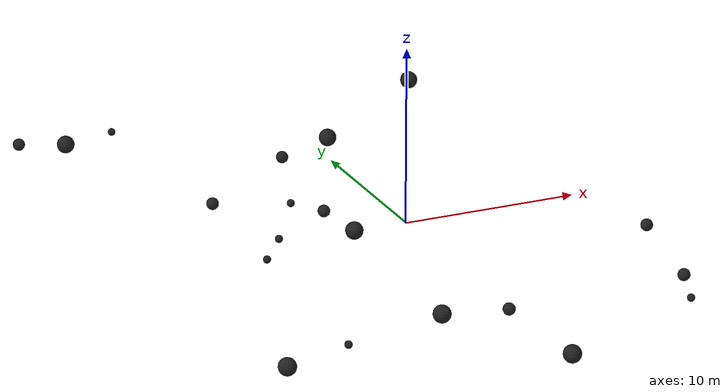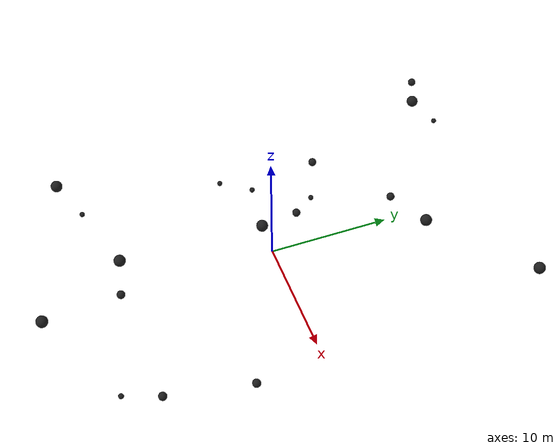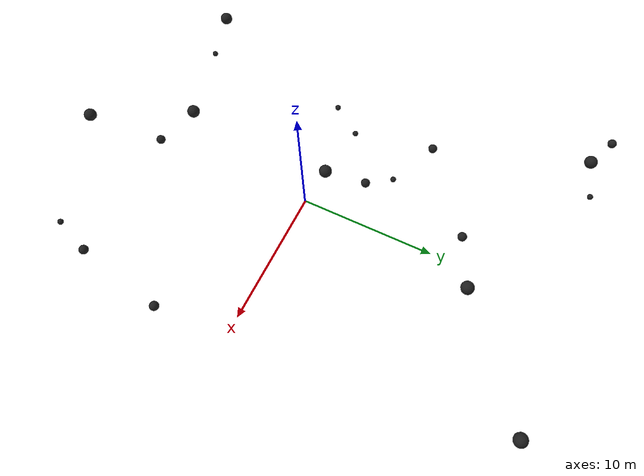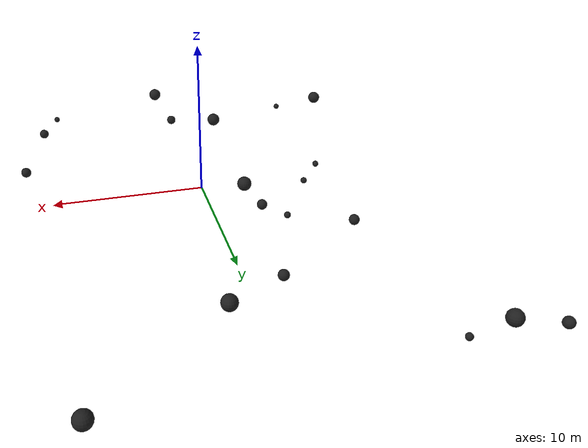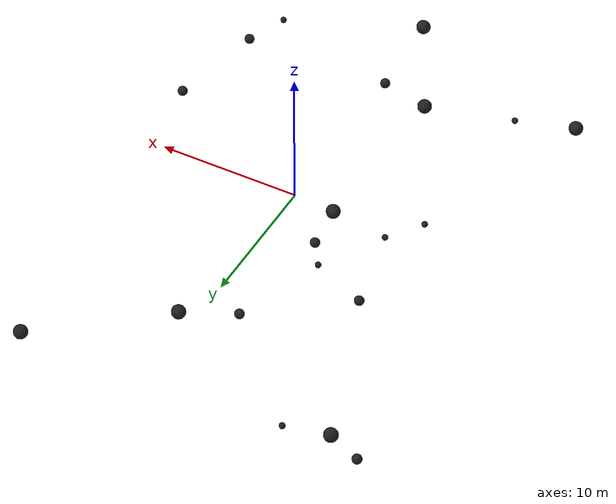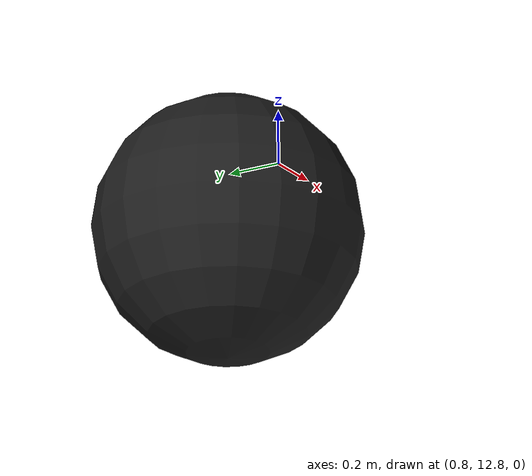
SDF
<?xml version="1.0"?>
<!-- automaticly generated by a script -->
<sdf version="1.6">
  <model name="robotx_obstacle_course">
    <include>
      <name>polyform_a3_0</name>
      <pose>-9.51901299938 -13.6526411138 0.0 0 0 0 </pose>
      <uri>model://polyform_a3</uri>
    </include>

    <include>
      <name>polyform_a3_1</name>
      <pose>-8.87493922023 -1.62732451142 0.0 0 0 0 </pose>
      <uri>model://polyform_a3</uri>
    </include>

    <include>
      <name>polyform_a3_2</name>
      <pose>-7.15997837919 0.735712823901 0.0 0 0 0 </pose>
      <uri>model://polyform_a3</uri>
    </include>

    <include>
      <name>polyform_a3_3</name>
      <pose>-9.52228297739 19.0434113951 0.0 0 0 0 </pose>
      <uri>model://polyform_a3</uri>
    </include>

    <include>
      <name>polyform_a3_4</name>
      <pose>9.31258210762 -15.3890309327 0.0 0 0 0 </pose>
      <uri>model://polyform_a3</uri>
    </include>

    <include>
      <name>polyform_a3_5</name>
      <pose>-4.54899725463 5.14004718159 0.0 0 0 0 </pose>
      <uri>model://polyform_a3</uri>
    </include>

    <include>
      <name>polyform_a5_0</name>
      <pose>-14.9976829466 19.3419442057 0.0 0 0 0 </pose>
      <uri>model://polyform_a5</uri>
    </include>

    <include>
      <name>polyform_a5_1</name>
      <pose>-2.27100525419 11.582333681 0.0 0 0 0 </pose>
      <uri>model://polyform_a5</uri>
    </include>

    <include>
      <name>polyform_a5_2</name>
      <pose>11.7647430317 -5.5495371033 0.0 0 0 0 </pose>
      <uri>model://polyform_a5</uri>
    </include>

    <include>
      <name>polyform_a5_3</name>
      <pose>-3.35584241716 3.37032512441 0.0 0 0 0 </pose>
      <uri>model://polyform_a5</uri>
    </include>

    <include>
      <name>polyform_a5_4</name>
      <pose>10.4068709522 -12.4876637829 0.0 0 0 0 </pose>
      <uri>model://polyform_a5</uri>
    </include>

    <include>
      <name>polyform_a5_5</name>
      <pose>-8.47331408752 6.80875432641 0.0 0 0 0 </pose>
      <uri>model://polyform_a5</uri>
    </include>

    <include>
      <name>polyform_a5_6</name>
      <pose>-0.0140695451195 -12.8572529135 0.0 0 0 0 </pose>
      <uri>model://polyform_a5</uri>
    </include>

    <include>
      <name>polyform_a7_0</name>
      <pose>-3.47434794301 -12.0321905918 0.0 0 0 0 </pose>
      <uri>model://polyform_a7</uri>
    </include>

    <include>
      <name>polyform_a7_1</name>
      <pose>1.26797614348 13.2948281227 0.0 0 0 0 </pose>
      <uri>model://polyform_a7</uri>
    </include>

    <include>
      <name>polyform_a7_2</name>
      <pose>-12.5899621971 18.2943689469 0.0 0 0 0 </pose>
      <uri>model://polyform_a7</uri>
    </include>

    <include>
      <name>polyform_a7_3</name>
      <pose>-2.98341339422 0.160281566457 0.0 0 0 0 </pose>
      <uri>model://polyform_a7</uri>
    </include>

    <include>
      <name>polyform_a7_4</name>
      <pose>0.418837873038 -19.3683419115 0.0 0 0 0 </pose>
      <uri>model://polyform_a7</uri>
    </include>

    <include>
      <name>polyform_a7_5</name>
      <pose>9.2676027467 19.7322015956 0.0 0 0 0 </pose>
      <uri>model://polyform_a7</uri>
    </include>

    <include>
      <name>polyform_a7_6</name>
      <pose>-13.4848986692 -14.9346088124 0.0 0 0 0 </pose>
      <uri>model://polyform_a7</uri>
    </include>

  </model>
</sdf>

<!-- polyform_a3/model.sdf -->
<sdf version="1.6">
  <!-- Reference: https://www.polyformus.com/buoys/a-series -->
  <model name="polyform_a3">
    <static>false</static>
    <pose>0 0 0 0 0 0</pose>
    <link name="base_link">
      <inertial>
        <!-- Reference: https://www.sailrite.com/PDF/Polyform-Buoys-Fenders-Accessories.pdf, page 8 -->
        <mass>3.1</mass>
      </inertial>
      <visual name="visual">
        <geometry>
          <sphere><radius>0.216</radius></sphere>
        </geometry>
        <material>
          <script>
            <uri>file://media/materials/scripts/gazebo.material</uri>
            <name>Gazebo/Black</name>
          </script>
        </material>
      </visual>
      <collision name="collision">
        <geometry>
          <sphere><radius>0.216</radius></sphere>
        </geometry>
      </collision>
    </link>

    <plugin name="BuoyancyPlugin" filename="libbuoyancy_gazebo_plugin.so">
      <wave_model>ocean_waves</wave_model>
      <fluid_density>1000</fluid_density>
      <fluid_level>0.0</fluid_level>
      <linear_drag>20.0</linear_drag>
      <angular_drag>2.0</angular_drag>
      <buoyancy name="buoyancy">
        <link_name>base_link</link_name>
        <geometry>
          <sphere><radius>0.216</radius></sphere>
        </geometry>
      </buoyancy>
    </plugin>

  </model>
</sdf>

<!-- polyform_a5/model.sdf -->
<sdf version="1.6">
  <!-- Reference: https://www.polyformus.com/buoys/a-series -->
  <model name="polyform_a5">
    <static>false</static>
    <pose>0 0 0 0 0 0</pose>
    <link name="base_link">
      <inertial>
        <!-- Reference: https://www.sailrite.com/PDF/Polyform-Buoys-Fenders-Accessories.pdf, page 8 -->
        <mass>8.98</mass>
      </inertial>
      <visual name="visual">
        <geometry>
          <sphere><radius>0.343</radius></sphere>
        </geometry>
        <material>
          <script>
            <uri>file://media/materials/scripts/gazebo.material</uri>
            <name>Gazebo/Black</name>
          </script>
        </material>
      </visual>
      <collision name="collision">
        <geometry>
          <sphere><radius>0.343</radius></sphere>
        </geometry>
      </collision>
    </link>

    <plugin name="BuoyancyPlugin" filename="libbuoyancy_gazebo_plugin.so">
      <wave_model>ocean_waves</wave_model>
      <fluid_density>1000</fluid_density>
      <fluid_level>0.0</fluid_level>
      <linear_drag>20.0</linear_drag>
      <angular_drag>2.0</angular_drag>
      <buoyancy name="buoyancy">
        <link_name>base_link</link_name>
        <geometry>
          <sphere><radius>0.343</radius></sphere>
        </geometry>
      </buoyancy>
    </plugin>

  </model>
</sdf>

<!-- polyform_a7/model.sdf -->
<sdf version="1.6">
  <!-- Reference: https://www.polyformus.com/buoys/a-series -->
  <model name="polyform_a7">
    <static>false</static>
    <pose>0 0 0 0 0 0</pose>
    <link name="base_link">
      <inertial>
        <!-- Reference: https://www.sailrite.com/PDF/Polyform-Buoys-Fenders-Accessories.pdf, page 8 -->
        <mass>24.49</mass>
      </inertial>
      <visual name="visual">
        <geometry>
          <sphere><radius>0.4955</radius></sphere>
        </geometry>
        <material>
          <script>
            <uri>file://media/materials/scripts/gazebo.material</uri>
            <name>Gazebo/Black</name>
          </script>
        </material>
      </visual>
      <collision name="collision">
        <geometry>
          <sphere><radius>0.4955</radius></sphere>
        </geometry>
      </collision>
    </link>

    <plugin name="BuoyancyPlugin" filename="libbuoyancy_gazebo_plugin.so">
      <wave_model>ocean_waves</wave_model>
      <fluid_density>1000</fluid_density>
      <fluid_level>0.0</fluid_level>
      <linear_drag>20.0</linear_drag>
      <angular_drag>2.0</angular_drag>
      <buoyancy name="buoyancy">
        <link_name>base_link</link_name>
        <geometry>
          <sphere><radius>0.4955</radius></sphere>
        </geometry>
      </buoyancy>
    </plugin>

  </model>
</sdf>
